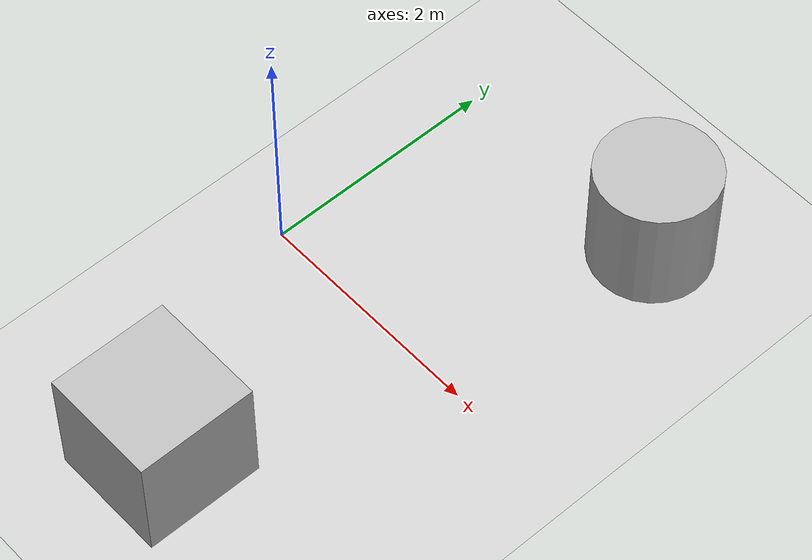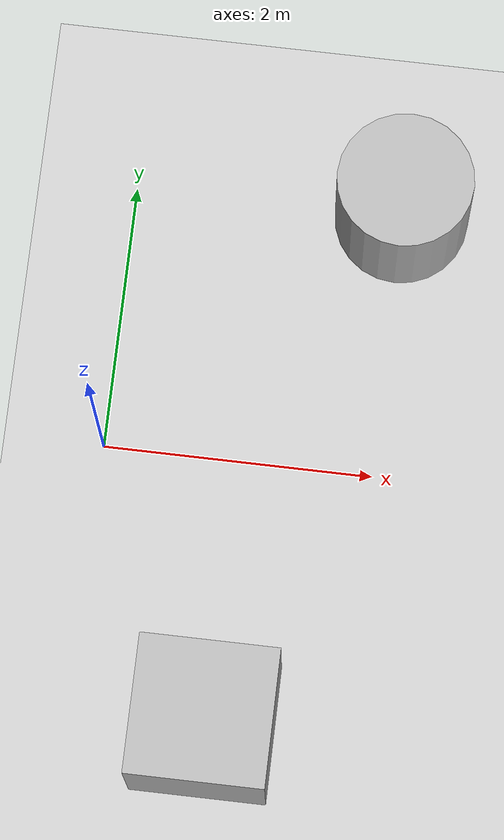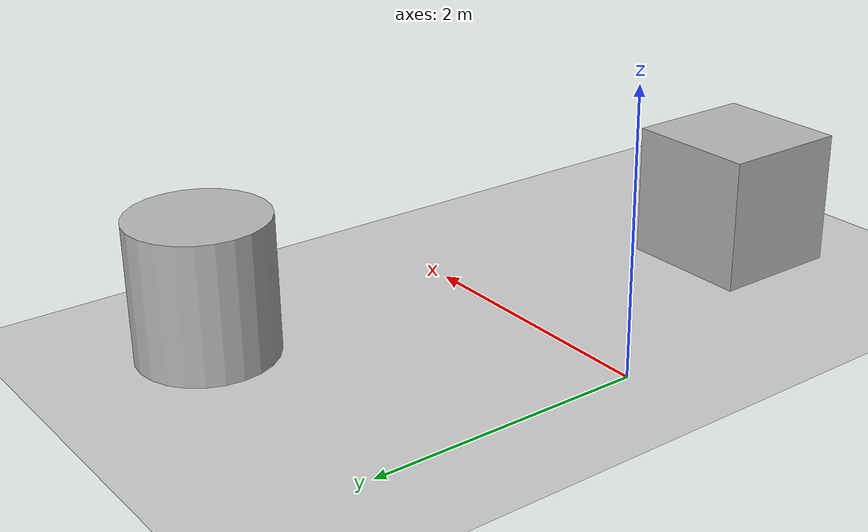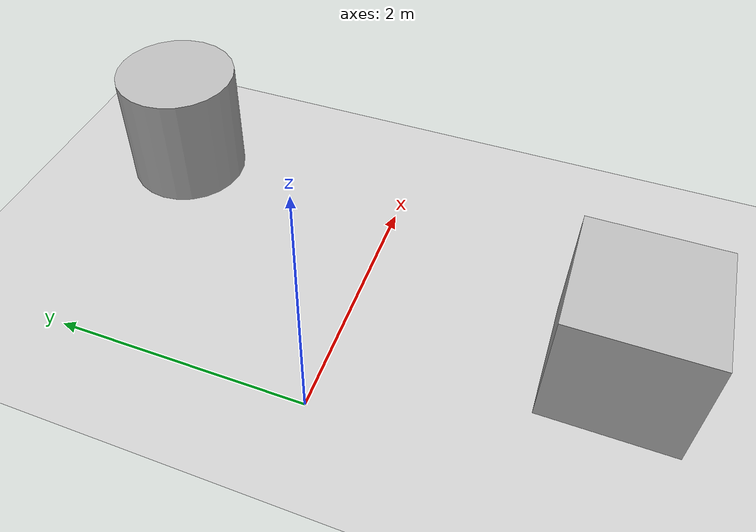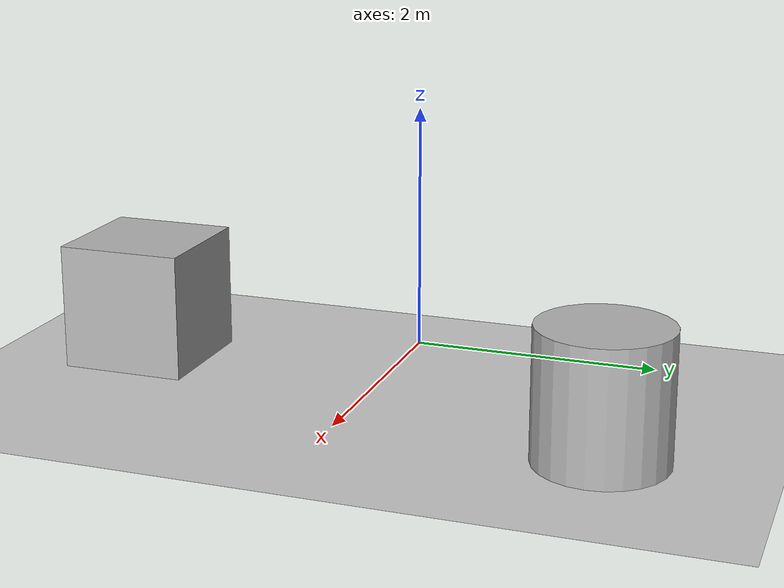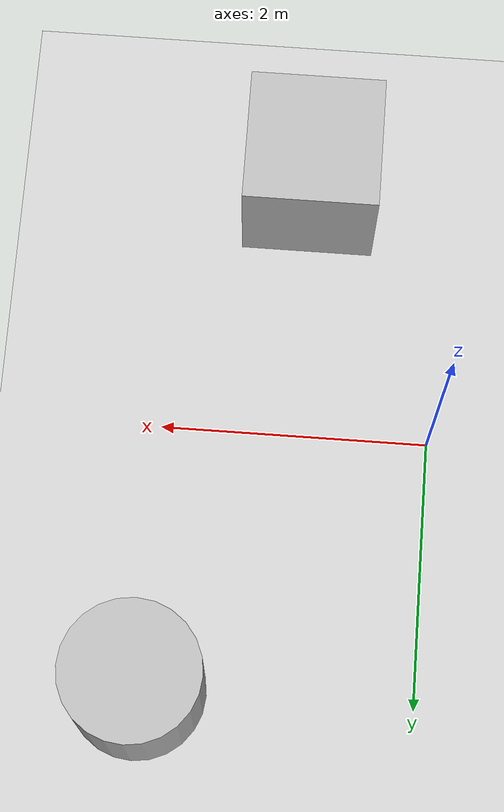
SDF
<?xml version='1.0'?>
<sdf version='1.9'>
  <world name='empty'>

    <!-- Physics -->
    <physics name='1ms' type='ignored'>
      <max_step_size>0.001</max_step_size>
      <real_time_factor>1</real_time_factor>
      <real_time_update_rate>1000</real_time_update_rate>
    </physics>

    <!-- Required Gazebo Systems -->
    <plugin name='gz::sim::systems::Physics' filename='gz-sim-physics-system'/>
    <plugin name='gz::sim::systems::UserCommands' filename='gz-sim-user-commands-system'/>
    <plugin name='gz::sim::systems::SceneBroadcaster' filename='gz-sim-scene-broadcaster-system'/>
    <plugin name='gz::sim::systems::Sensors' filename='gz-sim-sensors-system'>
      <render_engine>ogre2</render_engine>
    </plugin>
    <plugin name='gz::sim::systems::Contact' filename='gz-sim-contact-system'/>

    <!-- Global Environment -->
    <gravity>0 0 -9.8</gravity>
    <magnetic_field>5.56e-06 2.28e-05 -4.23e-05</magnetic_field>

    <scene>
      <ambient>0.4 0.4 0.4 1</ambient>
      <background>0.7 0.7 0.7 1</background>
      <shadows>true</shadows>
    </scene>

    <!-- Ground -->
    <model name='ground_plane'>
      <static>true</static>
      <link name='link'>
        <collision name='collision'>
          <geometry>
            <plane>
              <normal>0 0 1</normal>
              <size>100 100</size>
            </plane>
          </geometry>
        </collision>
        <visual name='visual'>
          <geometry>
            <plane>
              <normal>0 0 1</normal>
              <size>100 100</size>
            </plane>
          </geometry>
        </visual>
      </link>
    </model>

    <!-- Example objects (box & cylinder) -->
    <model name='box'>
      <pose>1 -2 0.5 0 0 0</pose>
      <static>false</static>
      <link name='box_link'>
        <collision name='box_collision'>
          <geometry>
            <box><size>1 1 1</size></box>
          </geometry>
        </collision>
        <visual name='box_visual'>
          <geometry>
            <box><size>1 1 1</size></box>
          </geometry>
        </visual>
      </link>
    </model>

    <model name='cylinder'>
      <pose>2 2 0.5 0 0 0</pose>
      <static>false</static>
      <link name='cylinder_link'>
        <collision name='cylinder_collision'>
          <geometry>
            <cylinder>
              <radius>0.5</radius>
              <length>1</length>
            </cylinder>
          </geometry>
        </collision>
        <visual name='cylinder_visual'>
          <geometry>
            <cylinder>
              <radius>0.5</radius>
              <length>1</length>
            </cylinder>
          </geometry>
        </visual>
      </link>
    </model>

    <!-- Sun Light -->
    <light name='sun' type='directional'>
      <pose>0 0 10 0 0 0</pose>
      <diffuse>0.8 0.8 0.8 1</diffuse>
      <direction>-0.5 0.1 -1</direction>
    </light>

    <!-- ✅ GUI: Auto-open LiDAR Scan Visualizer -->
    <gui>
      <!-- Plugin name varies by Gazebo version.
           If LaserScan doesn't work, replace with LidarScan -->
      <plugin filename="LaserScan" name="LaserScan">
        <topic>/scan</topic>   <!-- Or /lidar/scan if that's your sensor -->
      </plugin>
    </gui>

  </world>
</sdf>
